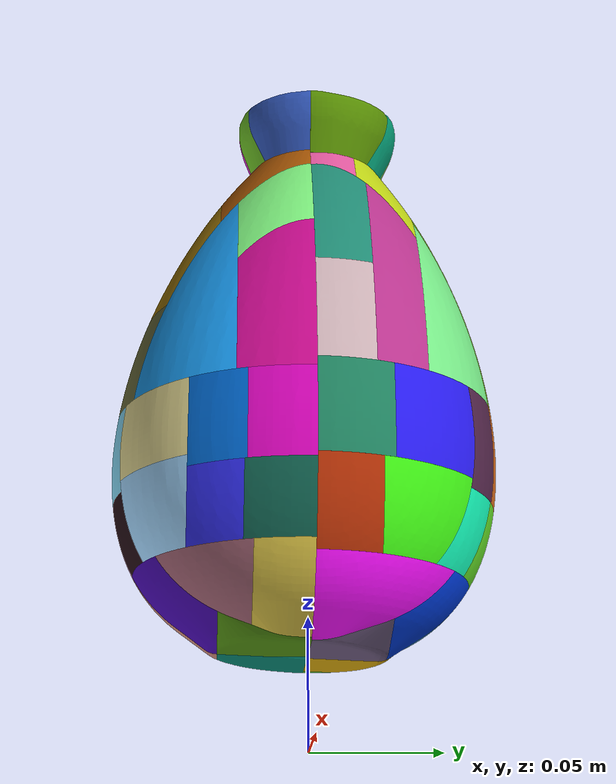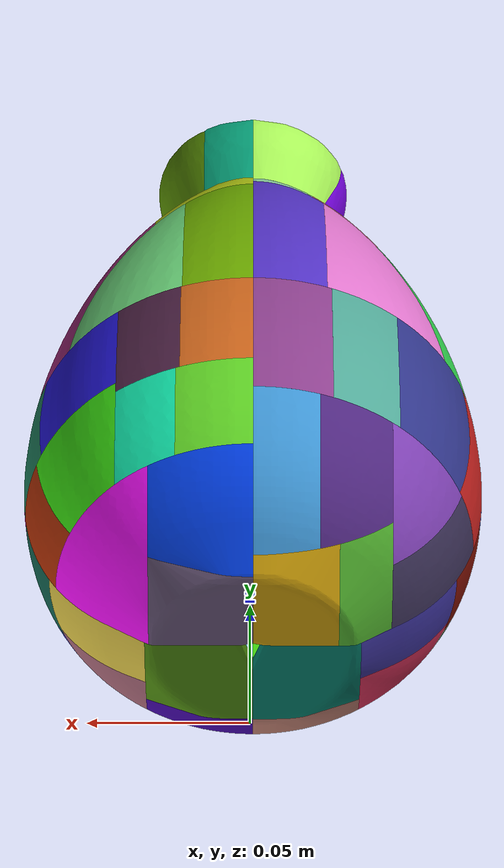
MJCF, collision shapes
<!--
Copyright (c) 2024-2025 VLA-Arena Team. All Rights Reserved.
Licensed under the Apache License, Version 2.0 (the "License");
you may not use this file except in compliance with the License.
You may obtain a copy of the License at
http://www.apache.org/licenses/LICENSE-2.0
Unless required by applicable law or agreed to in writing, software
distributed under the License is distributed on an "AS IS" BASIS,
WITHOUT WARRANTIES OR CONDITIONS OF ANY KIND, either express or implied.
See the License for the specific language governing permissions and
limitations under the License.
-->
<mujoco model="vase">
  <default>
    <default class="visual">
      <geom group="1" type="mesh" contype="0" conaffinity="0" density="100" />
    </default>
    <default class="collision">
      <geom group="0" type="mesh" solref="0.001 1" solimp="0.998 0.998 0.001" density="100" />
    </default>
    <default class="placepoint">
        <site type="sphere" size="0.01" group="2" rgba="1 0 0 0"/>
    </default>
    <default class="keypoint">
        <site type="sphere" size="0.01" group="3" rgba="1 0 0 1"/>
    </default>
  </default>
  <asset>
    <texture type="2d" name="vase" file="./visual/vase.png" />
    <material name="DefaultMaterial" texture="vase" specular="0.5" shininess="0.25" />
    <mesh file="./visual/vase.obj" scale="0.045 0.045 0.045" name="vase" />
    <mesh file="./collision/vase_collision_0.obj" scale="0.045 0.045 0.045" name="vase_collision_0" />
<mesh file="./collision/vase_collision_1.obj" scale="0.045 0.045 0.045" name="vase_collision_1" />
<mesh file="./collision/vase_collision_2.obj" scale="0.045 0.045 0.045" name="vase_collision_2" />
<mesh file="./collision/vase_collision_3.obj" scale="0.045 0.045 0.045" name="vase_collision_3" />
<mesh file="./collision/vase_collision_4.obj" scale="0.045 0.045 0.045" name="vase_collision_4" />
<mesh file="./collision/vase_collision_5.obj" scale="0.045 0.045 0.045" name="vase_collision_5" />
<mesh file="./collision/vase_collision_6.obj" scale="0.045 0.045 0.045" name="vase_collision_6" />
<mesh file="./collision/vase_collision_7.obj" scale="0.045 0.045 0.045" name="vase_collision_7" />
<mesh file="./collision/vase_collision_8.obj" scale="0.045 0.045 0.045" name="vase_collision_8" />
<mesh file="./collision/vase_collision_9.obj" scale="0.045 0.045 0.045" name="vase_collision_9" />
<mesh file="./collision/vase_collision_10.obj" scale="0.045 0.045 0.045" name="vase_collision_10" />
<mesh file="./collision/vase_collision_11.obj" scale="0.045 0.045 0.045" name="vase_collision_11" />
<mesh file="./collision/vase_collision_12.obj" scale="0.045 0.045 0.045" name="vase_collision_12" />
<mesh file="./collision/vase_collision_13.obj" scale="0.045 0.045 0.045" name="vase_collision_13" />
<mesh file="./collision/vase_collision_14.obj" scale="0.045 0.045 0.045" name="vase_collision_14" />
<mesh file="./collision/vase_collision_15.obj" scale="0.045 0.045 0.045" name="vase_collision_15" />
<mesh file="./collision/vase_collision_16.obj" scale="0.045 0.045 0.045" name="vase_collision_16" />
<mesh file="./collision/vase_collision_17.obj" scale="0.045 0.045 0.045" name="vase_collision_17" />
<mesh file="./collision/vase_collision_18.obj" scale="0.045 0.045 0.045" name="vase_collision_18" />
<mesh file="./collision/vase_collision_19.obj" scale="0.045 0.045 0.045" name="vase_collision_19" />
<mesh file="./collision/vase_collision_20.obj" scale="0.045 0.045 0.045" name="vase_collision_20" />
<mesh file="./collision/vase_collision_21.obj" scale="0.045 0.045 0.045" name="vase_collision_21" />
<mesh file="./collision/vase_collision_22.obj" scale="0.045 0.045 0.045" name="vase_collision_22" />
<mesh file="./collision/vase_collision_23.obj" scale="0.045 0.045 0.045" name="vase_collision_23" />
<mesh file="./collision/vase_collision_24.obj" scale="0.045 0.045 0.045" name="vase_collision_24" />
<mesh file="./collision/vase_collision_25.obj" scale="0.045 0.045 0.045" name="vase_collision_25" />
<mesh file="./collision/vase_collision_26.obj" scale="0.045 0.045 0.045" name="vase_collision_26" />
<mesh file="./collision/vase_collision_27.obj" scale="0.045 0.045 0.045" name="vase_collision_27" />
<mesh file="./collision/vase_collision_28.obj" scale="0.045 0.045 0.045" name="vase_collision_28" />
<mesh file="./collision/vase_collision_29.obj" scale="0.045 0.045 0.045" name="vase_collision_29" />
<mesh file="./collision/vase_collision_30.obj" scale="0.045 0.045 0.045" name="vase_collision_30" />
<mesh file="./collision/vase_collision_31.obj" scale="0.045 0.045 0.045" name="vase_collision_31" />
<mesh file="./collision/vase_collision_32.obj" scale="0.045 0.045 0.045" name="vase_collision_32" />
<mesh file="./collision/vase_collision_33.obj" scale="0.045 0.045 0.045" name="vase_collision_33" />
<mesh file="./collision/vase_collision_34.obj" scale="0.045 0.045 0.045" name="vase_collision_34" />
<mesh file="./collision/vase_collision_35.obj" scale="0.045 0.045 0.045" name="vase_collision_35" />
<mesh file="./collision/vase_collision_36.obj" scale="0.045 0.045 0.045" name="vase_collision_36" />
<mesh file="./collision/vase_collision_37.obj" scale="0.045 0.045 0.045" name="vase_collision_37" />
<mesh file="./collision/vase_collision_38.obj" scale="0.045 0.045 0.045" name="vase_collision_38" />
<mesh file="./collision/vase_collision_39.obj" scale="0.045 0.045 0.045" name="vase_collision_39" />
<mesh file="./collision/vase_collision_40.obj" scale="0.045 0.045 0.045" name="vase_collision_40" />
<mesh file="./collision/vase_collision_41.obj" scale="0.045 0.045 0.045" name="vase_collision_41" />
<mesh file="./collision/vase_collision_42.obj" scale="0.045 0.045 0.045" name="vase_collision_42" />
<mesh file="./collision/vase_collision_43.obj" scale="0.045 0.045 0.045" name="vase_collision_43" />
<mesh file="./collision/vase_collision_44.obj" scale="0.045 0.045 0.045" name="vase_collision_44" />
<mesh file="./collision/vase_collision_45.obj" scale="0.045 0.045 0.045" name="vase_collision_45" />
<mesh file="./collision/vase_collision_46.obj" scale="0.045 0.045 0.045" name="vase_collision_46" />
<mesh file="./collision/vase_collision_47.obj" scale="0.045 0.045 0.045" name="vase_collision_47" />
<mesh file="./collision/vase_collision_48.obj" scale="0.045 0.045 0.045" name="vase_collision_48" />
<mesh file="./collision/vase_collision_49.obj" scale="0.045 0.045 0.045" name="vase_collision_49" />
<mesh file="./collision/vase_collision_50.obj" scale="0.045 0.045 0.045" name="vase_collision_50" />
<mesh file="./collision/vase_collision_51.obj" scale="0.045 0.045 0.045" name="vase_collision_51" />
<mesh file="./collision/vase_collision_52.obj" scale="0.045 0.045 0.045" name="vase_collision_52" />
<mesh file="./collision/vase_collision_53.obj" scale="0.045 0.045 0.045" name="vase_collision_53" />
<mesh file="./collision/vase_collision_54.obj" scale="0.045 0.045 0.045" name="vase_collision_54" />
<mesh file="./collision/vase_collision_55.obj" scale="0.045 0.045 0.045" name="vase_collision_55" />
<mesh file="./collision/vase_collision_56.obj" scale="0.045 0.045 0.045" name="vase_collision_56" />
<mesh file="./collision/vase_collision_57.obj" scale="0.045 0.045 0.045" name="vase_collision_57" />
<mesh file="./collision/vase_collision_58.obj" scale="0.045 0.045 0.045" name="vase_collision_58" />
<mesh file="./collision/vase_collision_59.obj" scale="0.045 0.045 0.045" name="vase_collision_59" />
<mesh file="./collision/vase_collision_60.obj" scale="0.045 0.045 0.045" name="vase_collision_60" />
<mesh file="./collision/vase_collision_61.obj" scale="0.045 0.045 0.045" name="vase_collision_61" />
<mesh file="./collision/vase_collision_62.obj" scale="0.045 0.045 0.045" name="vase_collision_62" />
<mesh file="./collision/vase_collision_63.obj" scale="0.045 0.045 0.045" name="vase_collision_63" />
<mesh file="./collision/vase_collision_64.obj" scale="0.045 0.045 0.045" name="vase_collision_64" />
<mesh file="./collision/vase_collision_65.obj" scale="0.045 0.045 0.045" name="vase_collision_65" />
<mesh file="./collision/vase_collision_66.obj" scale="0.045 0.045 0.045" name="vase_collision_66" />
<mesh file="./collision/vase_collision_67.obj" scale="0.045 0.045 0.045" name="vase_collision_67" />
<mesh file="./collision/vase_collision_68.obj" scale="0.045 0.045 0.045" name="vase_collision_68" />
<mesh file="./collision/vase_collision_69.obj" scale="0.045 0.045 0.045" name="vase_collision_69" />
<mesh file="./collision/vase_collision_70.obj" scale="0.045 0.045 0.045" name="vase_collision_70" />
<mesh file="./collision/vase_collision_71.obj" scale="0.045 0.045 0.045" name="vase_collision_71" />
<mesh file="./collision/vase_collision_72.obj" scale="0.045 0.045 0.045" name="vase_collision_72" />
<mesh file="./collision/vase_collision_73.obj" scale="0.045 0.045 0.045" name="vase_collision_73" />
<mesh file="./collision/vase_collision_74.obj" scale="0.045 0.045 0.045" name="vase_collision_74" />
<mesh file="./collision/vase_collision_75.obj" scale="0.045 0.045 0.045" name="vase_collision_75" />
<mesh file="./collision/vase_collision_76.obj" scale="0.045 0.045 0.045" name="vase_collision_76" />
<mesh file="./collision/vase_collision_77.obj" scale="0.045 0.045 0.045" name="vase_collision_77" />
<mesh file="./collision/vase_collision_78.obj" scale="0.045 0.045 0.045" name="vase_collision_78" />
<mesh file="./collision/vase_collision_79.obj" scale="0.045 0.045 0.045" name="vase_collision_79" />
  </asset>
  <worldbody>
  <body>
    <body name="object" pos="0 0 0.15">
      <geom material="DefaultMaterial" mesh="vase" class="visual" />
      <geom mesh="vase_collision_0" rgba="0.46518418924888283 0.7252424749742825 0.002124875949967575 1" class="collision" />
      <geom mesh="vase_collision_1" rgba="0.9793295412925422 0.06305230669207207 0.9995751850410002 1" class="collision" />
      <geom mesh="vase_collision_2" rgba="0.4819954722848405 0.9401199473280313 0.5453195485484658 1" class="collision" />
      <geom mesh="vase_collision_3" rgba="0.8725515713244285 0.6532325640276417 0.6177338966655728 1" class="collision" />
      <geom mesh="vase_collision_4" rgba="0.34998242192426054 0.21489853539446235 0.8235818296810216 1" class="collision" />
      <geom mesh="vase_collision_5" rgba="0.107497981487365 0.6470395632952054 0.9987245405343941 1" class="collision" />
      <geom mesh="vase_collision_6" rgba="0.9332177046614432 0.4935623943023466 0.8523115647857951 1" class="collision" />
      <geom mesh="vase_collision_7" rgba="0.569309972959828 0.2615264713367782 0.5763195471963184 1" class="collision" />
      <geom mesh="vase_collision_8" rgba="0.24861013619000638 0.20731708775737445 0.8508639882143852 1" class="collision" />
      <geom mesh="vase_collision_9" rgba="0.286771574478072 0.5140904682003427 0.05369217907802226 1" class="collision" />
      <geom mesh="vase_collision_10" rgba="0.9519541254469548 0.09949386099772806 0.2852696475566002 1" class="collision" />
      <geom mesh="vase_collision_11" rgba="0.7383600144958403 0.20733411599332796 0.5665782076151237 1" class="collision" />
      <geom mesh="vase_collision_12" rgba="0.9237339519899231 0.21314869644259837 0.38823711017564233 1" class="collision" />
      <geom mesh="vase_collision_13" rgba="0.8023399951966719 0.04047111169816453 0.5667103349346342 1" class="collision" />
      <geom mesh="vase_collision_14" rgba="0.5109568649399263 0.2631547401296329 0.725922514090954 1" class="collision" />
      <geom mesh="vase_collision_15" rgba="0.2016251752879854 0.22271594252359816 0.5646989039746588 1" class="collision" />
      <geom mesh="vase_collision_16" rgba="0.551282870801717 0.6177401518819102 0.9673400697863274 1" class="collision" />
      <geom mesh="vase_collision_17" rgba="0.00797642449072733 0.2575865406802784 0.9308509450940071 1" class="collision" />
      <geom mesh="vase_collision_18" rgba="0.4149364075523345 0.22842597776379858 0.5029611675467559 1" class="collision" />
      <geom mesh="vase_collision_19" rgba="0.25377721726607283 0.21548829193363817 0.6439092648066155 1" class="collision" />
      <geom mesh="vase_collision_20" rgba="0.43818321256983483 0.44423569337948277 0.24378813537612576 1" class="collision" />
      <geom mesh="vase_collision_21" rgba="0.8368435909162745 0.7445599355269246 0.26140443048852624 1" class="collision" />
      <geom mesh="vase_collision_22" rgba="0.69381133459297 0.5232227842532965 0.044082921760133176 1" class="collision" />
      <geom mesh="vase_collision_23" rgba="0.015011366852505148 0.4873978059932309 0.41387213123217115 1" class="collision" />
      <geom mesh="vase_collision_24" rgba="0.3286887633030665 0.677630121898308 0.6094496323478998 1" class="collision" />
      <geom mesh="vase_collision_25" rgba="0.19796953315344745 0.8400010951058093 0.31226029538303623 1" class="collision" />
      <geom mesh="vase_collision_26" rgba="0.24132423323103702 0.02050567081773691 0.6163616989338974 1" class="collision" />
      <geom mesh="vase_collision_27" rgba="0.515834262890051 0.9841185613765482 0.5148264289346104 1" class="collision" />
      <geom mesh="vase_collision_28" rgba="0.7910840382083532 0.13766761805080574 0.1277354824503013 1" class="collision" />
      <geom mesh="vase_collision_29" rgba="0.9517531930690575 0.07246656517240135 0.12458677541538354 1" class="collision" />
      <geom mesh="vase_collision_30" rgba="0.24479540133608269 0.20456494246675827 0.3570338557927607 1" class="collision" />
      <geom mesh="vase_collision_31" rgba="0.39089438764121054 0.32411128949905177 0.4529360944638001 1" class="collision" />
      <geom mesh="vase_collision_32" rgba="0.6112425441452969 0.3760490306029207 0.437023819691136 1" class="collision" />
      <geom mesh="vase_collision_33" rgba="0.7166234835047837 0.4758479990879544 0.42176750029138343 1" class="collision" />
      <geom mesh="vase_collision_34" rgba="0.38655734586648394 0.021017383008751778 0.20578070638126544 1" class="collision" />
      <geom mesh="vase_collision_35" rgba="0.7024089843409518 0.363226174113225 0.023874119575572728 1" class="collision" />
      <geom mesh="vase_collision_36" rgba="0.5097079019289371 0.8434726817648103 0.9612718967867389 1" class="collision" />
      <geom mesh="vase_collision_37" rgba="0.784620041036653 0.14722757427913347 0.7502395015804555 1" class="collision" />
      <geom mesh="vase_collision_38" rgba="0.12250269960057525 0.039491886397577614 0.066685977698003 1" class="collision" />
      <geom mesh="vase_collision_39" rgba="0.1275264926957992 0.5564696088826832 0.4656216648161089 1" class="collision" />
      <geom mesh="vase_collision_40" rgba="0.1629118004031248 0.10734590581995529 0.9441787091222044 1" class="collision" />
      <geom mesh="vase_collision_41" rgba="0.190445502758134 0.5133069776428778 0.05741130780161674 1" class="collision" />
      <geom mesh="vase_collision_42" rgba="0.25362041720880857 0.9553883919307722 0.08043069292206206 1" class="collision" />
      <geom mesh="vase_collision_43" rgba="0.9146743938972194 0.8686109901337543 0.5868081286880068 1" class="collision" />
      <geom mesh="vase_collision_44" rgba="0.760391519620741 0.4624883244917981 0.06672382749915107 1" class="collision" />
      <geom mesh="vase_collision_45" rgba="0.9974281047443089 0.837354058681745 0.7841968165917302 1" class="collision" />
      <geom mesh="vase_collision_46" rgba="0.19734221796684748 0.3475239932713329 0.7369952223865749 1" class="collision" />
      <geom mesh="vase_collision_47" rgba="0.06290968919007978 0.36786619484723493 0.2994235296994797 1" class="collision" />
      <geom mesh="vase_collision_48" rgba="0.7800671323593731 0.8661953562968616 0.08829715053025433 1" class="collision" />
      <geom mesh="vase_collision_49" rgba="0.07323108964626768 0.9564272691652609 0.7163885697744029 1" class="collision" />
      <geom mesh="vase_collision_50" rgba="0.3244523787800768 0.14896606789080968 0.2892747403564151 1" class="collision" />
      <geom mesh="vase_collision_51" rgba="0.21267084523618063 0.6711346769309073 0.43758733721823506 1" class="collision" />
      <geom mesh="vase_collision_52" rgba="0.3030477913805859 0.936515493504605 0.0755712159727554 1" class="collision" />
      <geom mesh="vase_collision_53" rgba="0.5258511385032998 0.07641984719961792 0.028381596910362128 1" class="collision" />
      <geom mesh="vase_collision_54" rgba="0.8407011773974125 0.016980569821403058 0.722180026457689 1" class="collision" />
      <geom mesh="vase_collision_55" rgba="0.18517228556362597 0.1721727078157852 0.9030425641916914 1" class="collision" />
      <geom mesh="vase_collision_56" rgba="0.7854364158634872 0.6062641420197964 0.033368430555631545 1" class="collision" />
      <geom mesh="vase_collision_57" rgba="0.3460527147126503 0.5600525140055966 0.013544696133741985 1" class="collision" />
      <geom mesh="vase_collision_58" rgba="0.7024013822660901 0.19191382876314544 0.024477787196714007 1" class="collision" />
      <geom mesh="vase_collision_59" rgba="0.4858208109223888 0.22743508737279983 0.37028292246159167 1" class="collision" />
      <geom mesh="vase_collision_60" rgba="0.9347380946947719 0.8897542903916634 0.3663496141352529 1" class="collision" />
      <geom mesh="vase_collision_61" rgba="0.31898383242688677 0.6962726304741687 0.18364652322788289 1" class="collision" />
      <geom mesh="vase_collision_62" rgba="0.631947189849358 0.8369822658221411 0.9927737156613784 1" class="collision" />
      <geom mesh="vase_collision_63" rgba="0.3913405000706136 0.6968435431397653 0.12928980676258295 1" class="collision" />
      <geom mesh="vase_collision_64" rgba="0.1308795666699184 0.5397798218229871 0.33068648610962836 1" class="collision" />
      <geom mesh="vase_collision_65" rgba="0.8060672055297738 0.7014868289039955 0.719725411208987 1" class="collision" />
      <geom mesh="vase_collision_66" rgba="0.9184359580824082 0.35739115807275845 0.6470408562572492 1" class="collision" />
      <geom mesh="vase_collision_67" rgba="0.2561129046480479 0.6063692340058413 0.858032679609758 1" class="collision" />
      <geom mesh="vase_collision_68" rgba="0.1258802254587904 0.5138934184398973 0.3785619491905927 1" class="collision" />
      <geom mesh="vase_collision_69" rgba="0.8510540175937279 0.4255472851403116 0.1232652354247763 1" class="collision" />
      <geom mesh="vase_collision_70" rgba="0.3974551543748174 0.8672309904104615 0.15612395017822012 1" class="collision" />
      <geom mesh="vase_collision_71" rgba="0.9583102186310702 0.5592443015425886 0.8986433850677508 1" class="collision" />
      <geom mesh="vase_collision_72" rgba="0.05369691153095102 0.2361694575283334 0.09276068920091751 1" class="collision" />
      <geom mesh="vase_collision_73" rgba="0.024145925767207643 0.6387354717533412 0.4805393578594489 1" class="collision" />
      <geom mesh="vase_collision_74" rgba="0.001334601130786539 0.40933987961465446 0.8138914152957332 1" class="collision" />
      <geom mesh="vase_collision_75" rgba="0.320658995955331 0.1605137069745034 0.5142062621572204 1" class="collision" />
      <geom mesh="vase_collision_76" rgba="0.6732353367858397 0.9743437357300843 0.3503392222530357 1" class="collision" />
      <geom mesh="vase_collision_77" rgba="0.4824617924815735 0.019804455535263332 0.9114778101482458 1" class="collision" />
      <geom mesh="vase_collision_78" rgba="0.9356107439693119 0.49251161218781647 0.4950237615560378 1" class="collision" />
      <geom mesh="vase_collision_79" rgba="0.6283203231566474 0.9320837197793862 0.6967384959317082 1" class="collision" />
    </body>
    <site class="keypoint" pos="0.04 0.04 0.3"/>
    <site class="keypoint" pos="-0.04 -0.04 0"/>
    <site class="placepoint" pos="0 0 0.45"/>
    <site rgba="0 0 0 0" size="0.005" pos="0 0 -0.12" name="bottom_site" />
      <site rgba="0 0 0 0" size="0.005" pos="0 0 0.12" name="top_site" />
      <site rgba="0 0 0 0" size="0.005" pos="0.02 0.02 0" name="horizontal_radius_site" />
  </body>
  </worldbody>
</mujoco>
